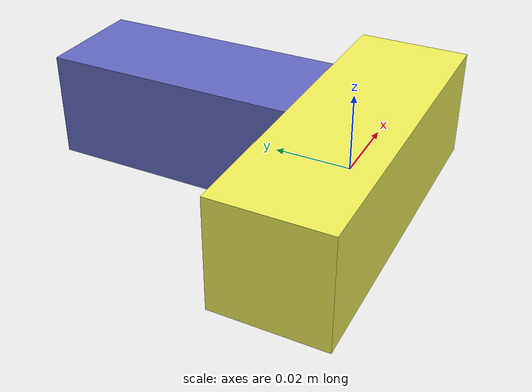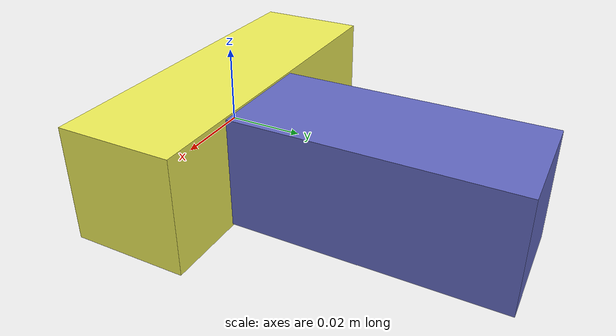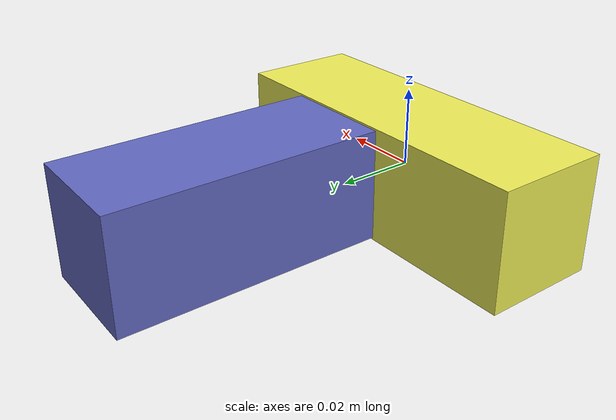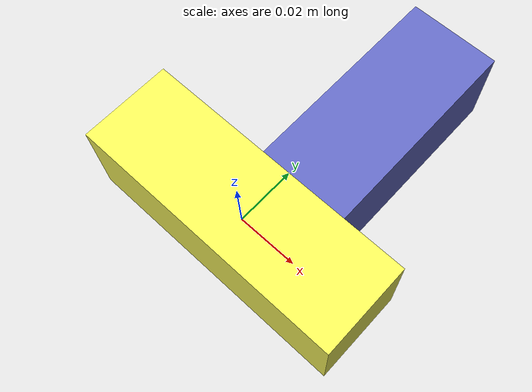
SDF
<sdf version="1.4"><world name="default"><model name="object0"><link name="link1"><pose>0 0 0 0 0 0</pose><inertial><pose>0 0 0 0 0 0</pose><mass>0.049346729319446204</mass><inertia><ixx>7.40200939791693e-06</ixx><ixy>0</ixy><iyy>3.804148409186965e-05</iyy><ixz>0</ixz><iyz>0</iyz><izz>3.804148409186965e-05</izz></inertia></inertial><visual name="link1_visual"><pose>0 0  0 0 0 0</pose><geometry><box><size>0.09138283207304854 0.03 0.03</size></box></geometry><material><diffuse>0.9447734372821255 0.9423817506658818 0.34441633380477754 1</diffuse></material></visual><collision><pose>0 0  0 0 0 0</pose><geometry><box><size>0.09138283207304854 0.03 0.03</size></box></geometry></collision></link><link name="link2"><pose>0.009879235292774985 0.045920315872141126 0 0 0 0</pose><inertial><pose>0 0 0 0 0 0</pose><mass>0.040795751477970946</mass><inertia><ixx>2.2262422274021395e-05</ixx><ixy>0</ixy><iyy>5.918783610262284e-06</iyy><ixz>0</ixz><iyz>0</iyz><izz>2.2463001385454754e-05</izz></inertia></inertial><visual name="link2_visual"><pose>0 0  0 0 0 0</pose><geometry><box><size>0.03 0.07554768792216843 0.028999999999999998</size></box></geometry><material><diffuse>0.3859668366475371 0.4111615314051027 0.7612763294722471 1</diffuse></material></visual><collision><pose>0 0  0 0 0 0</pose><geometry><box><size>0.03 0.07554768792216843 0.028999999999999998</size></box></geometry></collision></link><joint name="link_joint_0" type="fixed"><parent>link1</parent><child>link2</child><pose>0 0 0 0 0 0</pose><axis><xyz>0 0 1</xyz></axis></joint></model></world></sdf>
